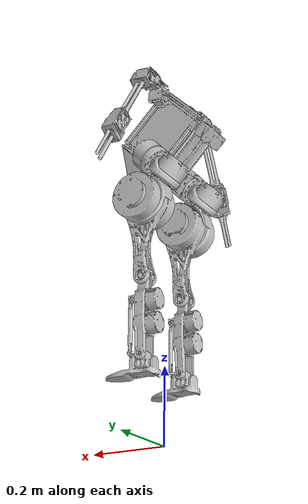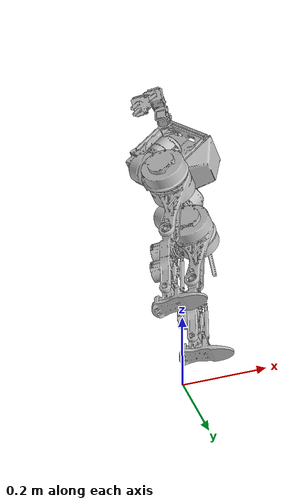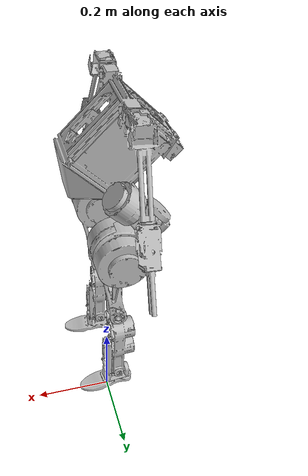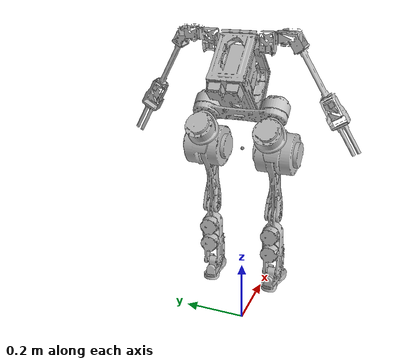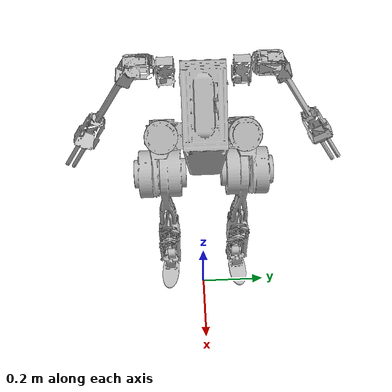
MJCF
<mujoco model="irmv_v2_0319">
  <compiler angle="radian" meshdir="meshes_irmv_v2/"/>

  <option timestep="0.001"  tolerance="1e-10" solver="Newton" jacobian="dense" cone="pyramidal" gravity="0 0 -9.81">  <!--integrator="RK4"  iteration="50"-->
        <flag contact="enable" energy="enable"/>
    </option>
    <size njmax="500" nconmax="1000" />
    <default>
        <light castshadow="false" />
        <geom rgba="0.784 0.784 0.784 1"/>
        <default class="visual">
            <geom contype="0" conaffinity="0" group="1" type="mesh" euler="1.57 0 0" />
        </default>
        <default class="collision">
            <geom contype="1" conaffinity="1" friction="1.0 0.3 0.3"
                margin="0.001" group="0" euler="1.57 0 0" />
        </default>
        <joint damping="0.1" frictionloss="0.02" armature="0.01"/>
    </default>

    <visual>
        <headlight diffuse="0.6 0.6 0.6" ambient="0.3 0.3 0.3" specular="0 0 0"/>
        <rgba haze="0.15 0.25 0.35 1"/>
        <global azimuth="150" elevation="-5"/>
    </visual>

  <asset>
    <mesh name="Link_base" file="Link_base.STL"/>
    <mesh name="Link_body" file="Link_body.STL"/>
    <mesh name="Link_hip_l_yaw" file="Link_hip_l_yaw.STL"/>
    <mesh name="Link_hip_l_roll" file="Link_hip_l_roll.STL"/>
    <mesh name="Link_hip_l_pitch" file="Link_hip_l_pitch.STL"/>
    <mesh name="Link_knee_l_pitch" file="Link_knee_l_pitch.STL"/>
    <mesh name="Link_ankle_l_pitch" file="Link_ankle_l_pitch.STL"/>
    <mesh name="Link_ankle_l_roll" file="Link_ankle_l_roll.STL"/>
    <mesh name="Link_hip_r_yaw" file="Link_hip_r_yaw.STL"/>
    <mesh name="Link_hip_r_roll" file="Link_hip_r_roll.STL"/>
    <mesh name="Link_hip_r_pitch" file="Link_hip_r_pitch.STL"/>
    <mesh name="Link_knee_r_pitch" file="Link_knee_r_pitch.STL"/>
    <mesh name="Link_ankle_r_pitch" file="Link_ankle_r_pitch.STL"/>
    <mesh name="Link_ankle_r_roll" file="Link_ankle_r_roll.STL"/>

  </asset>

  <worldbody>

   <body name="base_link" pos="0 0 0.6" euler = "0 0 0">
    <freejoint name="float_base" />
    <inertial  pos="-0.015775 -3.32E-05 0.1209" mass="1.7973" fullinertia="0.017873 0.0011627 0.017859 -1.18E-06 -9.241E-05 -4.3E-07" />
    <geom type="mesh" contype="0" conaffinity="0" group="1" density="0" rgba="0.75294 0.75294 0.75294 1" mesh="Link_base"/>
    <geom type="mesh" rgba="0.75294 0.75294 0.75294 1" mesh="Link_base"/>
    <site name="imu" quat="1 0 0 0"/>

    <body name="Link_body">
      <inertial pos="-0.017923 0.0012904 0.22071" quat="0.695624 0.689852 0.146506 -0.136919" mass="4.93" diaginertia="0.0735196 0.0594672 0.0357802"/>
      <geom type="mesh" contype="0" conaffinity="0" group="1" density="0" rgba="0.75294 0.75294 0.75294 1" mesh="Link_body"/>
      <geom type="mesh" rgba="0.75294 0.75294 0.75294 1" mesh="Link_body"/>
    </body>

    <body name="Link_hip_l_yaw" pos="-0.068236 0.1 0.068236">
      <inertial pos="0.0021922 -4.922e-05 0.0025535" quat="-0.0181531 0.907764 0.00775623 0.419016" mass="0.9411" diaginertia="0.000846924 0.000683322 0.000649664"/>
      <joint name="Joint_hip_l_yaw" pos="0 0 0" axis="0.707107 0 0.707107"/>
      <geom type="mesh" contype="0" conaffinity="0" group="1" density="0" rgba="0.75294 0.75294 0.75294 1" mesh="Link_hip_l_yaw"/>
      <geom type="mesh" rgba="0.75294 0.75294 0.75294 1" mesh="Link_hip_l_yaw"/>
      <body name="Link_hip_l_roll" pos="0.068236 0 -0.068236">
        <inertial pos="-0.0033731 0.036973 0.0032853" quat="0.722672 0.236356 0.299765 0.576213" mass="1.7075" diaginertia="0.00315726 0.00211019 0.00190544"/>
        <joint name="Joint_hip_l_roll" pos="0 0 0" axis="0.707107 0 -0.707107"/>
        <geom type="mesh" contype="0" conaffinity="0" group="1" density="0" rgba="0.75294 0.75294 0.75294 1" mesh="Link_hip_l_roll"/>
        <geom type="mesh" rgba="0.75294 0.75294 0.75294 1" mesh="Link_hip_l_roll"/>
        <body name="Link_hip_l_pitch">
          <inertial pos="0.0011796 -0.016905 -0.026609" quat="0.72471 -0.0348306 0.0450864 0.686695" mass="1.9602" diaginertia="0.00969205 0.00878611 0.00179664"/>
          <joint name="Joint_hip_l_pitch" pos="0 0 0" axis="0 -1 0"/>
          <geom type="mesh" contype="0" conaffinity="0" group="1" density="0" rgba="0.75294 0.75294 0.75294 1" mesh="Link_hip_l_pitch"/>
          <geom type="mesh" rgba="0.75294 0.75294 0.75294 1" mesh="Link_hip_l_pitch"/>
          <body name="Link_knee_l_pitch" pos="0 0 -0.2">
            <inertial pos="-0.0066852 0.00034298 -0.093038" quat="0.961778 0.00346824 0.0151493 0.273389" mass="1.0785" diaginertia="0.00254749 0.00252387 0.000511969"/>
            <joint name="Joint_knee_l_pitch" pos="0 0 0" axis="0 -1 0"/>
            <geom type="mesh" contype="0" conaffinity="0" group="1" density="0" rgba="0.75294 0.75294 0.75294 1" mesh="Link_knee_l_pitch"/>
            <geom type="mesh" rgba="0.75294 0.75294 0.75294 1" mesh="Link_knee_l_pitch"/>
            <body name="Link_ankle_l_pitch" pos="0 0 -0.2">
              <inertial pos="0 -0.00061416 -0.010352" quat="0.5 0.5 0.5 0.5" mass="0.058811" diaginertia="1.6724e-05 1.0652e-05 9.9632e-06"/>
              <joint name="Joint_ankle_l_pitch" pos="0 0 0" axis="0 -1 0"/>
              <geom type="mesh" contype="0" conaffinity="0" group="1" density="0" rgba="0.75294 0.75294 0.75294 1" mesh="Link_ankle_l_pitch"/>
              <geom type="mesh" rgba="0.75294 0.75294 0.75294 1" mesh="Link_ankle_l_pitch"/>
              <body name="Link_ankle_l_roll" pos="0 0 -0.018">
                <inertial pos="0.021459 0 -0.01976" quat="-0.0140341 0.712406 0.0334714 0.700829" mass="0.22291" diaginertia="0.000323301 0.000317275 6.71741e-05"/>
                <geom type="mesh" contype="0" conaffinity="0" group="1" density="0" rgba="0.75294 0.75294 0.75294 1" mesh="Link_ankle_l_roll"/>
                <geom type="mesh" rgba="0.75294 0.75294 0.75294 1" mesh="Link_ankle_l_roll"/>
                <geom type="box" pos="0 0 0" rgba="1 0 0 0"  size="0.075 0.02 0.035"/>
              </body>
            </body>
          </body>
        </body>
      </body>
    </body>
    <body name="Link_hip_r_yaw" pos="-0.068236 -0.1 0.068236">
      <inertial pos="0.0021922 4.922e-05 0.0025535" quat="0.0181531 0.907764 -0.00775623 0.419016" mass="0.9411" diaginertia="0.000846924 0.000683322 0.000649664"/>
      <joint name="Joint_hip_r_yaw" pos="0 0 0" axis="0.707107 0 0.707107"/>
      <geom type="mesh" contype="0" conaffinity="0" group="1" density="0" rgba="0.75294 0.75294 0.75294 1" mesh="Link_hip_r_yaw"/>
      <geom type="mesh" rgba="0.75294 0.75294 0.75294 1" mesh="Link_hip_r_yaw"/>
      <body name="Link_hip_r_roll" pos="0.068236 0 -0.068236">
        <inertial pos="-0.0033731 -0.036973 0.0032853" quat="0.576213 0.299765 0.236356 0.722672" mass="1.7075" diaginertia="0.00315726 0.00211019 0.00190544"/>
        <joint name="Joint_hip_r_roll" pos="0 0 0" axis="0.707107 0 -0.707107"/>
        <geom type="mesh" contype="0" conaffinity="0" group="1" density="0" rgba="0.75294 0.75294 0.75294 1" mesh="Link_hip_r_roll"/>
        <geom type="mesh" rgba="0.75294 0.75294 0.75294 1" mesh="Link_hip_r_roll"/>
        <body name="Link_hip_r_pitch">
          <inertial pos="0.00117955 0.016905 -0.0266088" quat="0.686695 0.0450864 -0.0348306 0.72471" mass="1.9602" diaginertia="0.00969205 0.00878611 0.00179664"/>
          <joint name="Joint_hip_r_pitch" pos="0 0 0" axis="0 -1 0"/>
          <geom type="mesh" contype="0" conaffinity="0" group="1" density="0" rgba="0.75294 0.75294 0.75294 1" mesh="Link_hip_r_pitch"/>
          <geom type="mesh" rgba="0.75294 0.75294 0.75294 1" mesh="Link_hip_r_pitch"/>
          <body name="Link_knee_r_pitch" pos="0 0 -0.2">
            <inertial pos="-0.0066852 -0.00034298 -0.093038" quat="0.961778 -0.00346824 0.0151493 -0.273389" mass="1.0785" diaginertia="0.00254749 0.00252387 0.000511969"/>
            <joint name="Joint_knee_r_pitch" pos="0 0 0" axis="0 -1 0"/>
            <geom type="mesh" contype="0" conaffinity="0" group="1" density="0" rgba="0.75294 0.75294 0.75294 1" mesh="Link_knee_r_pitch"/>
            <geom type="mesh" rgba="0.75294 0.75294 0.75294 1" mesh="Link_knee_r_pitch"/>
            <body name="Link_ankle_r_pitch" pos="0 0 -0.2">
              <inertial pos="0 0.00061416 -0.010352" quat="0.5 0.5 0.5 0.5" mass="0.058811" diaginertia="1.6724e-05 1.0652e-05 9.9632e-06"/>
              <joint name="Joint_ankle_r_pitch" pos="0 0 0" axis="0 -1 0"/>
              <geom type="mesh" contype="0" conaffinity="0" group="1" density="0" rgba="0.75294 0.75294 0.75294 1" mesh="Link_ankle_r_pitch"/>
              <geom type="mesh" rgba="0.75294 0.75294 0.75294 1" mesh="Link_ankle_r_pitch"/>
              <body name="Link_ankle_r_roll" pos="0 0 -0.018">
                <inertial pos="0.0214588 0 -0.0197595" quat="0.0140387 0.712406 -0.0334696 0.700829" mass="0.22291" diaginertia="0.000323301 0.000317275 6.7174e-05"/>
                <geom type="mesh" contype="0" conaffinity="0" group="1" density="0" rgba="0.75294 0.75294 0.75294 1" mesh="Link_ankle_r_roll"/>
                <geom type="mesh" rgba="0.75294 0.75294 0.75294 1" mesh="Link_ankle_r_roll"/>
                <geom type="box" pos="0 0 0" rgba="1 0 0 0"  size="0.075 0.02 0.035"/>
              </body>
            </body>
          </body>
        </body>
      </body>
    </body>
  </body>
  </worldbody>

<contact>
  <!-- 左腿的碰撞接触排除 -->
  <exclude name="ex_hip_l_yaw_waist" body1="Link_hip_l_yaw" body2="base_link"/>
  <exclude name="ex_hip_l_roll_hip_l_yaw" body1="Link_hip_l_roll" body2="Link_hip_l_yaw"/>
  <exclude name="ex_hip_l_pitch_hip_l_roll" body1="Link_hip_l_pitch" body2="Link_hip_l_roll"/>
  <exclude name="ex_knee_l_pitch_hip_l_pitch" body1="Link_knee_l_pitch" body2="Link_hip_l_pitch"/>
  <exclude name="ex_ankle_l_pitch_knee_l_pitch" body1="Link_ankle_l_pitch" body2="Link_knee_l_pitch"/>
  <exclude name="ex_ankle_l_roll_ankle_l_pitch" body1="Link_ankle_l_roll" body2="Link_ankle_l_pitch"/>

  <!-- 右腿的碰撞接触排除 -->
  <exclude name="ex_hip_r_yaw_waist" body1="Link_hip_r_yaw" body2="base_link"/>
  <exclude name="ex_hip_r_roll_hip_r_yaw" body1="Link_hip_r_roll" body2="Link_hip_r_yaw"/>
  <exclude name="ex_hip_r_pitch_hip_r_roll" body1="Link_hip_r_pitch" body2="Link_hip_r_roll"/>
  <exclude name="ex_knee_r_pitch_hip_r_pitch" body1="Link_knee_r_pitch" body2="Link_hip_r_pitch"/>
  <exclude name="ex_ankle_r_pitch_knee_r_pitch" body1="Link_ankle_r_pitch" body2="Link_knee_r_pitch"/>
  <exclude name="ex_ankle_r_roll_ankle_r_pitch" body1="Link_ankle_r_roll" body2="Link_ankle_r_pitch"/>

  <!-- 每个 Body 与 Link_body 的碰撞接触排除 -->
  <exclude name="ex_hip_l_yaw_body" body1="Link_hip_l_yaw" body2="Link_body"/>
  <exclude name="ex_hip_l_roll_body" body1="Link_hip_l_roll" body2="Link_body"/>
  <exclude name="ex_hip_l_pitch_body" body1="Link_hip_l_pitch" body2="Link_body"/>
  <exclude name="ex_knee_l_pitch_body" body1="Link_knee_l_pitch" body2="Link_body"/>
  <exclude name="ex_ankle_l_pitch_body" body1="Link_ankle_l_pitch" body2="Link_body"/>
  <exclude name="ex_ankle_l_roll_body" body1="Link_ankle_l_roll" body2="Link_body"/>

  <exclude name="ex_hip_r_yaw_body" body1="Link_hip_r_yaw" body2="Link_body"/>
  <exclude name="ex_hip_r_roll_body" body1="Link_hip_r_roll" body2="Link_body"/>
  <exclude name="ex_hip_r_pitch_body" body1="Link_hip_r_pitch" body2="Link_body"/>
  <exclude name="ex_knee_r_pitch_body" body1="Link_knee_r_pitch" body2="Link_body"/>
  <exclude name="ex_ankle_r_pitch_body" body1="Link_ankle_r_pitch" body2="Link_body"/>
  <exclude name="ex_ankle_r_roll_body" body1="Link_ankle_r_roll" body2="Link_body"/>
</contact>

<actuator>
  <motor name="Moint_hip_l_yaw" joint="Joint_hip_l_yaw" gear="1" ctrlrange="-160 160" ctrllimited="true"/>
  <motor name="Moint_hip_l_roll" joint="Joint_hip_l_roll" gear="1" ctrlrange="-320 320" ctrllimited="true"/>
  <motor name="Moint_hip_l_pitch" joint="Joint_hip_l_pitch" gear="1" ctrlrange="-396 396" ctrllimited="true"/>
  <motor name="Moint_knee_l_pitch" joint="Joint_knee_l_pitch" gear="1" ctrlrange="-396 396" ctrllimited="true"/>
  <motor name="Moint_ankle_l_pitch" joint="Joint_ankle_l_pitch" gear="1" ctrlrange="-160 160" ctrllimited="true"/>

  <motor name="Moint_hip_r_yaw" joint="Joint_hip_r_yaw" gear="1" ctrlrange="-160 160" ctrllimited="true"/>
  <motor name="Moint_hip_r_roll" joint="Joint_hip_r_roll" gear="1" ctrlrange="-320 320" ctrllimited="true"/>
  <motor name="Moint_hip_r_pitch" joint="Joint_hip_r_pitch" gear="1" ctrlrange="-396 396" ctrllimited="true"/>
  <motor name="Moint_knee_r_pitch" joint="Joint_knee_r_pitch" gear="1" ctrlrange="-396 396" ctrllimited="true"/>
  <motor name="Moint_ankle_r_pitch" joint="Joint_ankle_r_pitch" gear="1" ctrlrange="-160 160" ctrllimited="true"/>
</actuator>

  <sensor>
      <framequat name="baselink-quat" objtype="site" objname="imu" />
      <velocimeter name="baselink-velocity" site="imu" />
      <gyro name="baselink-gyro" site="imu" />
      <accelerometer name="baselink-baseAcc" site="imu" />
  </sensor>

</mujoco>
